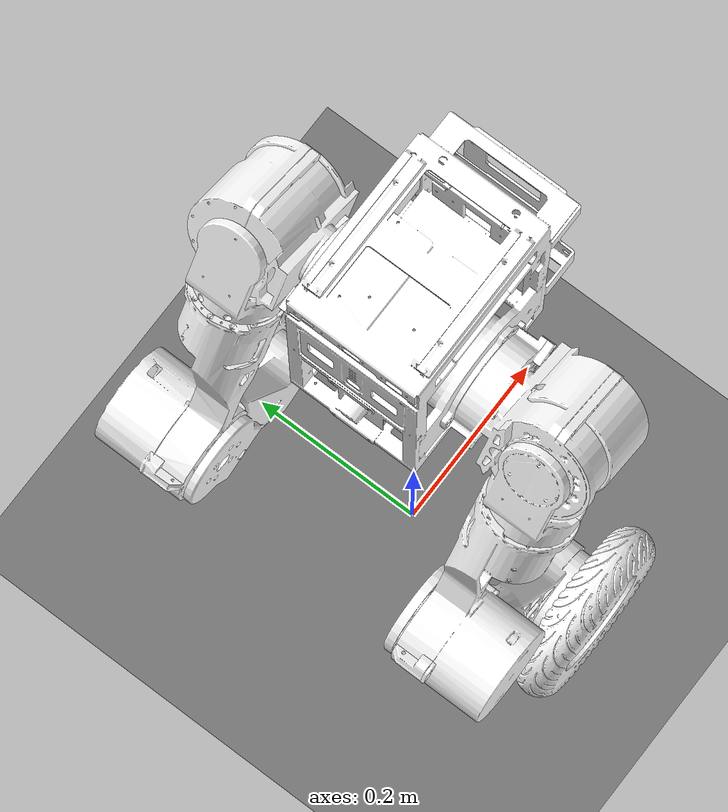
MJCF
<mujoco model="bipedal_robot">
  <option iterations="50" timestep="0.001" solver="PGS" gravity="0 0 -9.81" />

  <compiler angle="radian" meshdir="../meshes" eulerseq="zyx" autolimits="true" />

  <default>
    <joint limited="true" damping="0.01" armature="0.01" frictionloss="0.01" />
    <geom condim="4" contype="1" conaffinity="15" friction="0.9 0.2 0.2" solref="0.001 2" />
    <motor ctrllimited="true" />
    <equality solref="0.001 2" />
    <default class="visualgeom">
      <geom material="visualgeom" condim="1" contype="0" conaffinity="0" />
    </default>
  </default>

  <asset>
    <mesh name="base_Link" file="base_Link.STL" />
    <mesh name="abad_L_Link" file="abad_L_Link.STL" />
    <mesh name="hip_L_Link" file="hip_L_Link.STL" />
    <mesh name="yaw_L_Link" file="yaw_L_Link.STL" />
    <mesh name="knee_L_Link" file="knee_L_Link.STL" />
    <mesh name="wheel_L_Link" file="wheel_L_Link.STL" />
    <mesh name="abad_R_Link" file="abad_R_Link.STL" />
    <mesh name="hip_R_Link" file="hip_R_Link.STL" />
    <mesh name="yaw_R_Link" file="yaw_R_Link.STL" />
    <mesh name="wheel_R_Link" file="wheel_R_Link.STL" />
    <mesh name="knee_R_Link" file="knee_R_Link.STL" />
    <material name="visualgeom" rgba="0.5 0.9 0.2 1" />
    <texture name="texplane" type="2d" builtin="checker" rgb1="0.35 0.35 0.35" rgb2="0.55 0.55 0.55" width="512" height="512" mark="cross" markrgb=".8 .8 .8"/>
    <material name="matplane" reflectance="0.0" texture="texplane" texrepeat="1 1" texuniform="true"/>
  </asset>

  <worldbody>
    <light directional="true" diffuse="0.6 0.6 0.6" specular="0.2 0.2 0.2" pos="0 0 4" dir="0 0 -1" castshadow="false" />
    <geom name="ground" type="plane" pos="0 0 0" size="100 100 0.001" quat="1 0 0 0" material="matplane" condim="3" conaffinity="15" />
    <camera name="fixed" pos="0 -3.0 1.2166930221166838" xyaxes="1 0 0 0 0 1" />
    <camera name="track" mode="trackcom" pos="0 -3.0 1.2166930221166838" xyaxes="1 0 0 0 0 1" />
    <body name="root" pos="0 0 0.7166930221166837" quat="1 0 0 0">
      <joint name="floating_base_joint" type="free" damping="100000001" stiffness="1000000001"/>
      <site name="imu" size="0.01" pos="0 0 0" />
      <geom type="mesh" rgba="1 1 1 1" mesh="base_Link" contype="1" conaffinity="0" density="0" group="1" class="visualgeom" />
      <geom type="mesh" rgba="1 1 1 1" mesh="base_Link" />
      <body name="abad_L_Link" pos="-0.00049 0.10649 0.0586">
        <inertial pos="0.00951 0.05904 -0.00467" quat="0.288173 0.548257 0.626865 0.472665" mass="2.42561" diaginertia="0.00416594 0.00407442 0.00382963" />
        <joint name="abad_L_Joint" pos="0 0 0" axis="0 1 0" range="-3.58944 2.15269" actuatorfrcrange="-140 140" />
        <geom type="mesh" rgba="1 1 1 1" mesh="abad_L_Link" contype="1" conaffinity="0" density="0" group="1" class="visualgeom" />
        <geom type="mesh" rgba="1 1 1 1" mesh="abad_L_Link" />
        <body name="hip_L_Link" pos="0.0448 0.062 -0.02152">
          <inertial pos="-0.06846 0.00027 -0.0321" quat="0.454509 0.541762 0.535481 0.46171" mass="0.50271" diaginertia="0.00205014 0.00131149 0.00124837" />
          <joint name="hip_L_Joint" pos="0 0 0" axis="0.90138 0 -0.43303" range="-0.260578 2.11315" actuatorfrcrange="-140 140" />
          <geom type="mesh" rgba="1 1 1 1" mesh="hip_L_Link" contype="1" conaffinity="0" density="0" group="1" class="visualgeom" />
          <geom type="mesh" rgba="1 1 1 1" mesh="hip_L_Link" />
          <body name="yaw_L_Link" pos="-0.0936 0 -0.08006">
            <inertial pos="-0.07354 -0.00574 -0.1532" quat="0.665732 0.15751 0.155893 0.712523" mass="3.43624" diaginertia="0.0352751 0.0351763 0.0047086" />
            <joint name="yaw_L_Joint" pos="0 0 0" axis="0.43303 0 0.90138" range="-2.70526 1.48353" actuatorfrcrange="-40 40" />
            <geom type="mesh" rgba="1 1 1 1" mesh="yaw_L_Link" contype="1" conaffinity="0" density="0" group="1" class="visualgeom" />
            <geom type="mesh" rgba="1 1 1 1" mesh="yaw_L_Link" />
            <body name="knee_L_Link" pos="-0.10276 -0.04115 -0.21389">
              <inertial pos="0.10281 0.04222 -0.21372" quat="0.674066 -0.109404 -0.204432 0.701336" mass="1.9798" diaginertia="0.036068 0.0357881 0.00162394" />
              <joint name="knee_L_Joint" pos="0 0 0" axis="0 1 0" range="-1.72212 3.51387" actuatorfrcrange="-140 140" />
              <geom type="mesh" rgba="1 1 1 1" mesh="knee_L_Link" contype="1" conaffinity="0" density="0" group="1" class="visualgeom" />
              <geom type="mesh" rgba="1 1 1 1" mesh="knee_L_Link" />
              <body name="wheel_L_Link" pos="0.15161 0.09165 -0.31546">
                <inertial pos="0.00012 0.004 -0.00064" quat="0.70391 -0.0671633 -0.0671633 0.70391" mass="0.75" diaginertia="0.00447 0.00236193 0.00230807" />
                <joint name="wheel_L_Joint" pos="0 0 0" axis="0 1 0" range="-1.74533e+06 1.74533e+06" actuatorfrcrange="-22 22" />
                <geom type="mesh" rgba="1 1 1 1" mesh="wheel_L_Link" contype="1" conaffinity="0" density="0" group="1" class="visualgeom" />
                <geom type="mesh" rgba="1 1 1 1" mesh="wheel_L_Link" />
              </body>
            </body>
          </body>
        </body>
      </body>
      <body name="abad_R_Link" pos="-0.00049 -0.10631 0.0586">
        <inertial pos="-0.00959 -0.05904 0.00451" quat="0.280113 0.539455 0.65885 0.443218" mass="2.42561" diaginertia="0.00416632 0.0040781 0.00383557" />
        <joint name="abad_R_Joint" pos="0 0 0" axis="0 1 0" range="-3.58944 2.15269" actuatorfrcrange="-140 140" />
        <geom type="mesh" rgba="1 1 1 1" mesh="abad_R_Link" contype="1" conaffinity="0" density="0" group="1" class="visualgeom" />
        <geom type="mesh" rgba="1 1 1 1" mesh="abad_R_Link" />
        <body name="hip_R_Link" pos="-0.0448 -0.062 0.02152">
          <inertial pos="0.01773 -0.00027 -0.0735" quat="0.26935 0.648805 0.657436 0.272542" mass="0.50271" diaginertia="0.00205013 0.00130993 0.00124994" />
          <joint name="hip_R_Joint" pos="0 0 0" axis="0.90138 0 -0.43303" range="-2.11315 0.260578" actuatorfrcrange="-140 140" />
          <geom type="mesh" rgba="1 1 1 1" mesh="hip_R_Link" contype="1" conaffinity="0" density="0" group="1" class="visualgeom" />
          <geom type="mesh" rgba="1 1 1 1" mesh="hip_R_Link" />
          <body name="yaw_R_Link" pos="-0.004 0 -0.12311">
            <inertial pos="-0.07363 0.00574 -0.15315" quat="0.662948 0.167558 0.146598 0.714796" mass="3.43624" diaginertia="0.0352754 0.035176 0.00470851" />
            <joint name="yaw_R_Joint" pos="0 0 0" axis="0.43303 0 0.90138" range="-1.48353 2.70526" actuatorfrcrange="-40 40" />
            <geom type="mesh" rgba="1 1 1 1" mesh="yaw_R_Link" contype="1" conaffinity="0" density="0" group="1" class="visualgeom" />
            <geom type="mesh" rgba="1 1 1 1" mesh="yaw_R_Link" />
            <body name="knee_R_Link" pos="-0.10276 0.04115 -0.21389">
              <inertial pos="0.10281 -0.04222 -0.21372" quat="0.701336 -0.204432 -0.109404 0.674066" mass="1.9798" diaginertia="0.036068 0.0357881 0.00162394" />
              <joint name="knee_R_Joint" pos="0 0 0" axis="0 1 0" range="-1.72212 3.51387" actuatorfrcrange="-140 140" />
              <geom type="mesh" rgba="1 1 1 1" mesh="knee_R_Link" contype="1" conaffinity="0" density="0" group="1" class="visualgeom" />
              <geom type="mesh" rgba="1 1 1 1" mesh="knee_R_Link" />
              <body name="wheel_R_Link" pos="0.15161 -0.09165 -0.31546">
                <inertial pos="0.00012 -0.004 -0.00064" quat="0.70391 -0.0671633 -0.0671633 0.70391" mass="0.75" diaginertia="0.00447 0.00236193 0.00230807" />
                <joint name="wheel_R_Joint" pos="0 0 0" axis="0 1 0" range="-1.74533e+06 1.74533e+06" actuatorfrcrange="-22 22" />
                <geom type="mesh" rgba="1 1 1 1" mesh="wheel_R_Link" contype="1" conaffinity="0" density="0" group="1" class="visualgeom" />
                <geom type="mesh" rgba="1 1 1 1" mesh="wheel_R_Link" />
              </body>
            </body>
          </body>
        </body>
      </body>
    </body>
  </worldbody>

  <actuator>
    <motor name="abad_L_Joint" joint="abad_L_Joint" ctrllimited="true" ctrlrange="-140 140" gear="1" />
    <motor name="hip_L_Joint" joint="hip_L_Joint" ctrllimited="true" ctrlrange="-140 140" gear="1" />
    <motor name="yaw_L_Joint" joint="yaw_L_Joint" ctrllimited="true" ctrlrange="-40 40" gear="1" />
    <motor name="knee_L_Joint" joint="knee_L_Joint" ctrllimited="true" ctrlrange="-140 140" gear="1" />
    <motor name="wheel_L_Joint" joint="wheel_L_Joint" ctrllimited="true" ctrlrange="-22 22" gear="1" />
    <motor name="abad_R_Joint" joint="abad_R_Joint" ctrllimited="true" ctrlrange="-140 140" gear="1" />
    <motor name="hip_R_Joint" joint="hip_R_Joint" ctrllimited="true" ctrlrange="-140 140" gear="1" />
    <motor name="yaw_R_Joint" joint="yaw_R_Joint" ctrllimited="true" ctrlrange="-40 40" gear="1" />
    <motor name="knee_R_Joint" joint="knee_R_Joint" ctrllimited="true" ctrlrange="-140 140" gear="1" />
    <motor name="wheel_R_Joint" joint="wheel_R_Joint" ctrllimited="true" ctrlrange="-22 22" gear="1" />
  </actuator>

  <sensor>
    <actuatorpos name="abad_L_Joint_p" actuator="abad_L_Joint" />
    <actuatorvel name="abad_L_Joint_v" actuator="abad_L_Joint" />
    <actuatorfrc name="abad_L_Joint_f" actuator="abad_L_Joint" noise="0.001" />
    <actuatorpos name="hip_L_Joint_p" actuator="hip_L_Joint" />
    <actuatorvel name="hip_L_Joint_v" actuator="hip_L_Joint" />
    <actuatorfrc name="hip_L_Joint_f" actuator="hip_L_Joint" noise="0.001" />
    <actuatorpos name="yaw_L_Joint_p" actuator="yaw_L_Joint" />
    <actuatorvel name="yaw_L_Joint_v" actuator="yaw_L_Joint" />
    <actuatorfrc name="yaw_L_Joint_f" actuator="yaw_L_Joint" noise="0.001" />
    <actuatorpos name="knee_L_Joint_p" actuator="knee_L_Joint" />
    <actuatorvel name="knee_L_Joint_v" actuator="knee_L_Joint" />
    <actuatorfrc name="knee_L_Joint_f" actuator="knee_L_Joint" noise="0.001" />
    <actuatorpos name="wheel_L_Joint_p" actuator="wheel_L_Joint" />
    <actuatorvel name="wheel_L_Joint_v" actuator="wheel_L_Joint" />
    <actuatorfrc name="wheel_L_Joint_f" actuator="wheel_L_Joint" noise="0.001" />
    <actuatorpos name="abad_R_Joint_p" actuator="abad_R_Joint" />
    <actuatorvel name="abad_R_Joint_v" actuator="abad_R_Joint" />
    <actuatorfrc name="abad_R_Joint_f" actuator="abad_R_Joint" noise="0.001" />
    <actuatorpos name="hip_R_Joint_p" actuator="hip_R_Joint" />
    <actuatorvel name="hip_R_Joint_v" actuator="hip_R_Joint" />
    <actuatorfrc name="hip_R_Joint_f" actuator="hip_R_Joint" noise="0.001" />
    <actuatorpos name="yaw_R_Joint_p" actuator="yaw_R_Joint" />
    <actuatorvel name="yaw_R_Joint_v" actuator="yaw_R_Joint" />
    <actuatorfrc name="yaw_R_Joint_f" actuator="yaw_R_Joint" noise="0.001" />
    <actuatorpos name="knee_R_Joint_p" actuator="knee_R_Joint" />
    <actuatorvel name="knee_R_Joint_v" actuator="knee_R_Joint" />
    <actuatorfrc name="knee_R_Joint_f" actuator="knee_R_Joint" noise="0.001" />
    <actuatorpos name="wheel_R_Joint_p" actuator="wheel_R_Joint" />
    <actuatorvel name="wheel_R_Joint_v" actuator="wheel_R_Joint" />
    <actuatorfrc name="wheel_R_Joint_f" actuator="wheel_R_Joint" noise="0.001" />

    <framequat name="quat" objtype="site" noise="0.001" objname="imu" />
    <gyro name="gyro" site="imu" noise="0.005" cutoff="34.9" />
    <accelerometer name="acc" site="imu"/>
  </sensor>
</mujoco>
